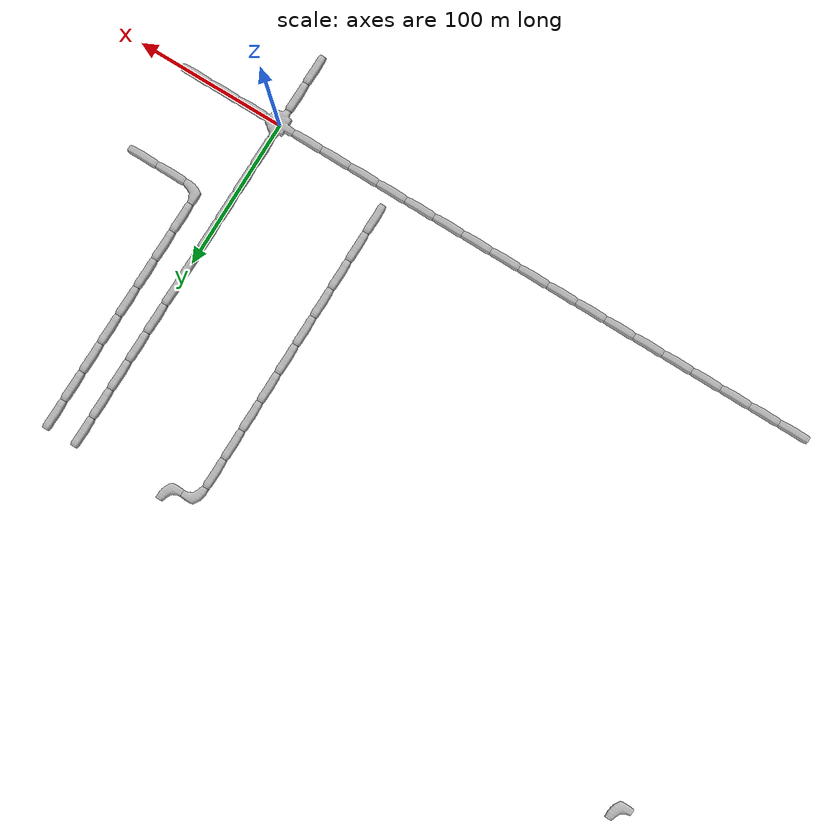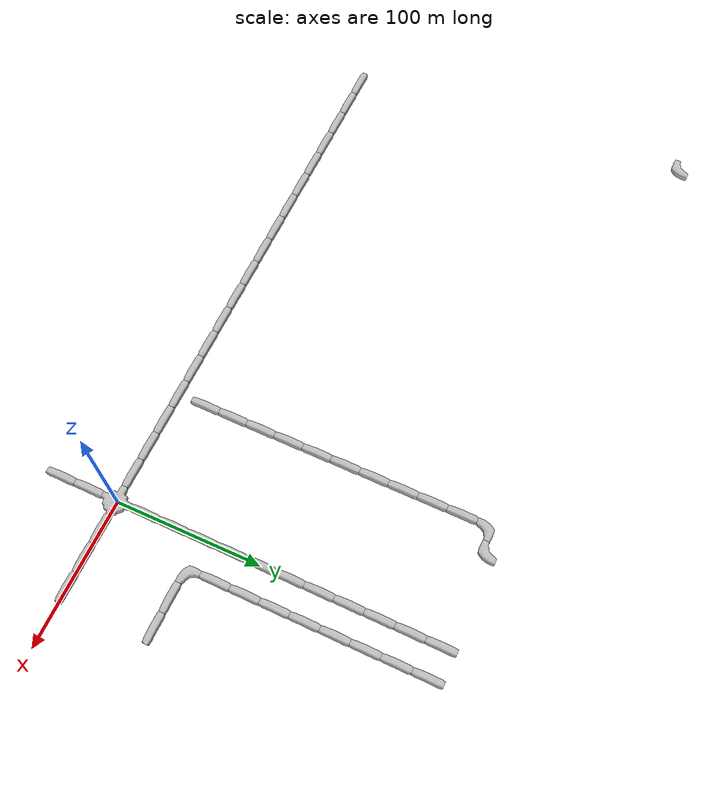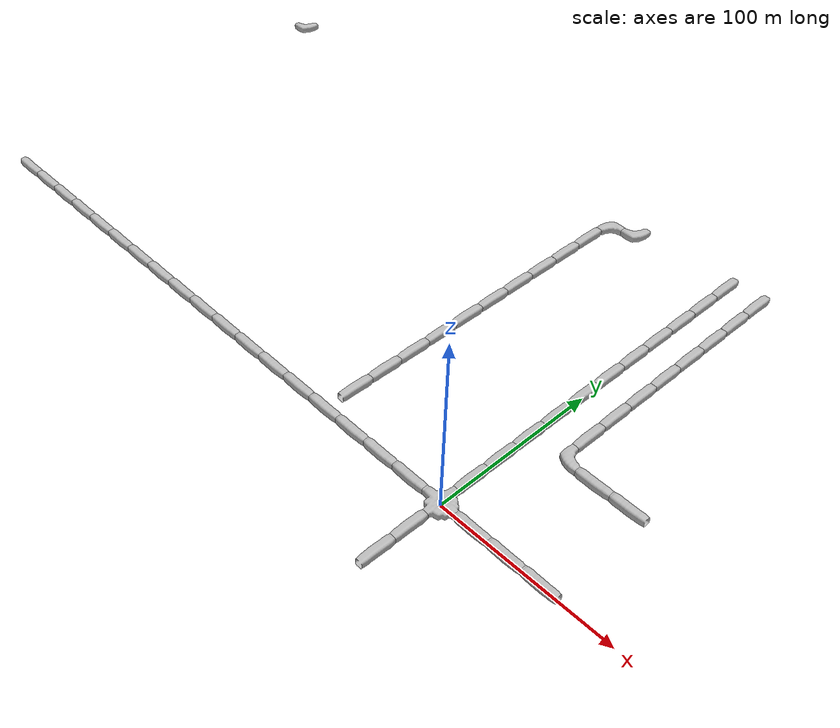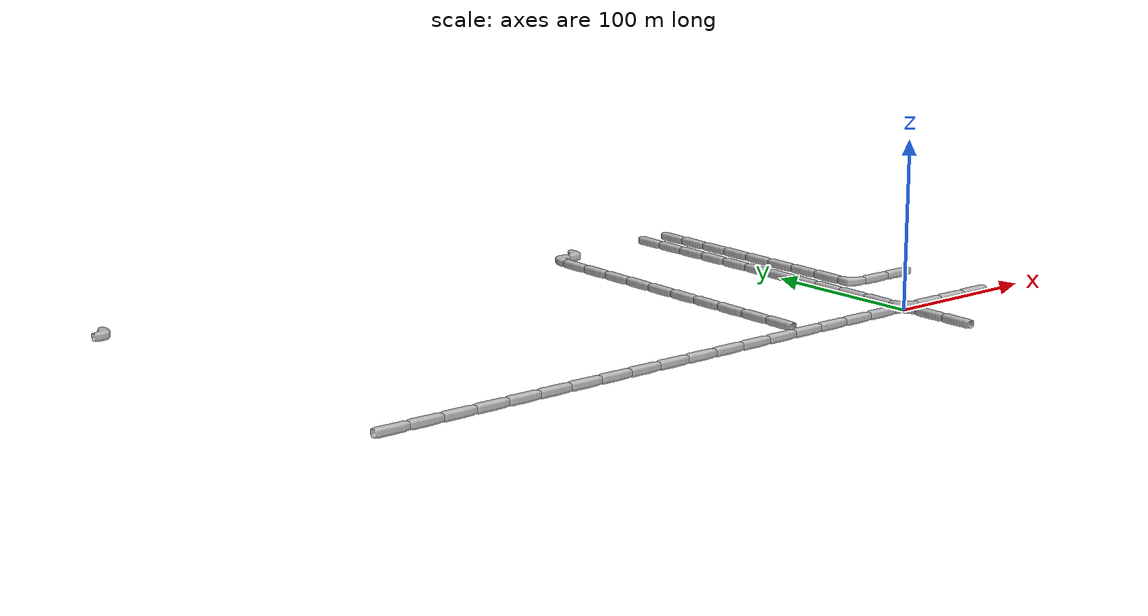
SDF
<sdf version="1.6">
 <world name="cave_32000_2">
  <include>
   <static>true</static>
   <name>cave_0_0</name>
   <pose>0 0 0 0 0 -1.5707963267948966</pose>
   <uri>model://cave_4way_20m</uri>
  </include>
  <include>
   <static>true</static>
   <name>cave_1_0</name>
   <pose>20 0 0 0 0 1.5707963267948966</pose>
   <uri>model://cave_straight_20m</uri>
  </include>
  <include>
   <static>true</static>
   <name>cave_2_0</name>
   <pose>40 0 0 0 0 1.5707963267948966</pose>
   <uri>model://cave_straight_20m</uri>
  </include>
  <include>
   <static>true</static>
   <name>cave_3_0</name>
   <pose>60 0 0 0 0 1.5707963267948966</pose>
   <uri>model://cave_straight_20m</uri>
  </include>
  <include>
   <static>true</static>
   <name>cave_0_-1</name>
   <pose>0 -20 0 0 0 0.0</pose>
   <uri>model://cave_straight_20m</uri>
  </include>
  <include>
   <static>true</static>
   <name>cave_0_-2</name>
   <pose>0 -40 0 0 0 0.0</pose>
   <uri>model://cave_straight_20m</uri>
  </include>
  <include>
   <static>true</static>
   <name>cave_-1_0</name>
   <pose>-20 0 0 0 0 1.5707963267948966</pose>
   <uri>model://cave_straight_20m</uri>
  </include>
  <include>
   <static>true</static>
   <name>cave_-2_0</name>
   <pose>-40 0 0 0 0 1.5707963267948966</pose>
   <uri>model://cave_straight_20m</uri>
  </include>
  <include>
   <static>true</static>
   <name>cave_-3_0</name>
   <pose>-60 0 0 0 0 1.5707963267948966</pose>
   <uri>model://cave_straight_20m</uri>
  </include>
  <include>
   <static>true</static>
   <name>cave_-4_0</name>
   <pose>-80 0 0 0 0 1.5707963267948966</pose>
   <uri>model://cave_straight_20m</uri>
  </include>
  <include>
   <static>true</static>
   <name>cave_-5_0</name>
   <pose>-100 0 0 0 0 1.5707963267948966</pose>
   <uri>model://cave_straight_20m</uri>
  </include>
  <include>
   <static>true</static>
   <name>cave_-6_0</name>
   <pose>-120 0 0 0 0 1.5707963267948966</pose>
   <uri>model://cave_straight_20m</uri>
  </include>
  <include>
   <static>true</static>
   <name>cave_-7_0</name>
   <pose>-140 0 0 0 0 1.5707963267948966</pose>
   <uri>model://cave_straight_20m</uri>
  </include>
  <include>
   <static>true</static>
   <name>cave_-8_0</name>
   <pose>-160 0 0 0 0 1.5707963267948966</pose>
   <uri>model://cave_straight_20m</uri>
  </include>
  <include>
   <static>true</static>
   <name>cave_-9_0</name>
   <pose>-180 0 0 0 0 1.5707963267948966</pose>
   <uri>model://cave_straight_20m</uri>
  </include>
  <include>
   <static>true</static>
   <name>cave_-10_0</name>
   <pose>-200 0 0 0 0 1.5707963267948966</pose>
   <uri>model://cave_straight_20m</uri>
  </include>
  <include>
   <static>true</static>
   <name>cave_-11_0</name>
   <pose>-220 0 0 0 0 1.5707963267948966</pose>
   <uri>model://cave_straight_20m</uri>
  </include>
  <include>
   <static>true</static>
   <name>cave_-12_0</name>
   <pose>-240 0 0 0 0 1.5707963267948966</pose>
   <uri>model://cave_straight_20m</uri>
  </include>
  <include>
   <static>true</static>
   <name>cave_-13_0</name>
   <pose>-260 0 0 0 0 1.5707963267948966</pose>
   <uri>model://cave_straight_20m</uri>
  </include>
  <include>
   <static>true</static>
   <name>cave_-14_0</name>
   <pose>-280 0 0 0 0 1.5707963267948966</pose>
   <uri>model://cave_straight_20m</uri>
  </include>
  <include>
   <static>true</static>
   <name>cave_-15_0</name>
   <pose>-300 0 0 0 0 1.5707963267948966</pose>
   <uri>model://cave_straight_20m</uri>
  </include>
  <include>
   <static>true</static>
   <name>cave_-16_0</name>
   <pose>-320 0 0 0 0 1.5707963267948966</pose>
   <uri>model://cave_straight_20m</uri>
  </include>
  <include>
   <static>true</static>
   <name>cave_-17_0</name>
   <pose>-340 0 0 0 0 1.5707963267948966</pose>
   <uri>model://cave_straight_20m</uri>
  </include>
  <include>
   <static>true</static>
   <name>cave_-18_0</name>
   <pose>-360 0 0 0 0 1.5707963267948966</pose>
   <uri>model://cave_straight_20m</uri>
  </include>
  <include>
   <static>true</static>
   <name>cave_-19_12</name>
   <pose>-380 240 0 0 0 1.5707963267948966</pose>
   <uri>model://cave_L_20m</uri>
  </include>
  <include>
   <static>true</static>
   <name>cave_0_1</name>
   <pose>0 20 0 0 0 0.0</pose>
   <uri>model://cave_straight_20m</uri>
  </include>
  <include>
   <static>true</static>
   <name>cave_0_2</name>
   <pose>0 40 0 0 0 0.0</pose>
   <uri>model://cave_straight_20m</uri>
  </include>
  <include>
   <static>true</static>
   <name>cave_0_3</name>
   <pose>0 60 0 0 0 0.0</pose>
   <uri>model://cave_straight_20m</uri>
  </include>
  <include>
   <static>true</static>
   <name>cave_0_4</name>
   <pose>0 80 0 0 0 0.0</pose>
   <uri>model://cave_straight_20m</uri>
  </include>
  <include>
   <static>true</static>
   <name>cave_0_5</name>
   <pose>0 100 0 0 0 0.0</pose>
   <uri>model://cave_straight_20m</uri>
  </include>
  <include>
   <static>true</static>
   <name>cave_0_6</name>
   <pose>0 120 0 0 0 0.0</pose>
   <uri>model://cave_straight_20m</uri>
  </include>
  <include>
   <static>true</static>
   <name>cave_0_7</name>
   <pose>0 140 0 0 0 0.0</pose>
   <uri>model://cave_straight_20m</uri>
  </include>
  <include>
   <static>true</static>
   <name>cave_0_8</name>
   <pose>0 160 0 0 0 0.0</pose>
   <uri>model://cave_straight_20m</uri>
  </include>
  <include>
   <static>true</static>
   <name>cave_0_9</name>
   <pose>0 180 0 0 0 0.0</pose>
   <uri>model://cave_straight_20m</uri>
  </include>
  <include>
   <static>true</static>
   <name>cave_0_10</name>
   <pose>0 200 0 0 0 0.0</pose>
   <uri>model://cave_straight_20m</uri>
  </include>
  <include>
   <static>true</static>
   <name>cave_0_11</name>
   <pose>0 220 0 0 0 0.0</pose>
   <uri>model://cave_straight_20m</uri>
  </include>
  <include>
   <static>true</static>
   <name>cave_-3_11</name>
   <pose>-60 220 0 0 0 1.5707963267948966</pose>
   <uri>model://cave_L_20m</uri>
  </include>
  <include>
   <static>true</static>
   <name>cave_-4_11</name>
   <pose>-80 220 0 0 0 -1.5707963267948966</pose>
   <uri>model://cave_L_20m</uri>
  </include>
  <include>
   <static>true</static>
   <name>cave_-4_10</name>
   <pose>-80 200 0 0 0 0.0</pose>
   <uri>model://cave_straight_20m</uri>
  </include>
  <include>
   <static>true</static>
   <name>cave_-4_9</name>
   <pose>-80 180 0 0 0 0.0</pose>
   <uri>model://cave_straight_20m</uri>
  </include>
  <include>
   <static>true</static>
   <name>cave_-4_8</name>
   <pose>-80 160 0 0 0 0.0</pose>
   <uri>model://cave_straight_20m</uri>
  </include>
  <include>
   <static>true</static>
   <name>cave_-4_7</name>
   <pose>-80 140 0 0 0 0.0</pose>
   <uri>model://cave_straight_20m</uri>
  </include>
  <include>
   <static>true</static>
   <name>cave_-4_6</name>
   <pose>-80 120 0 0 0 0.0</pose>
   <uri>model://cave_straight_20m</uri>
  </include>
  <include>
   <static>true</static>
   <name>cave_-4_5</name>
   <pose>-80 100 0 0 0 0.0</pose>
   <uri>model://cave_straight_20m</uri>
  </include>
  <include>
   <static>true</static>
   <name>cave_-4_4</name>
   <pose>-80 80 0 0 0 0.0</pose>
   <uri>model://cave_straight_20m</uri>
  </include>
  <include>
   <static>true</static>
   <name>cave_-4_3</name>
   <pose>-80 60 0 0 0 0.0</pose>
   <uri>model://cave_straight_20m</uri>
  </include>
  <include>
   <static>true</static>
   <name>cave_-4_2</name>
   <pose>-80 40 0 0 0 0.0</pose>
   <uri>model://cave_straight_20m</uri>
  </include>
  <include>
   <static>true</static>
   <name>cave_-4_1</name>
   <pose>-80 20 0 0 0 0.0</pose>
   <uri>model://cave_straight_20m</uri>
  </include>
  <include>
   <static>true</static>
   <name>cave_1_11</name>
   <pose>20 220 0 0 0 0.0</pose>
   <uri>model://cave_straight_20m</uri>
  </include>
  <include>
   <static>true</static>
   <name>cave_1_10</name>
   <pose>20 200 0 0 0 0.0</pose>
   <uri>model://cave_straight_20m</uri>
  </include>
  <include>
   <static>true</static>
   <name>cave_1_9</name>
   <pose>20 180 0 0 0 0.0</pose>
   <uri>model://cave_straight_20m</uri>
  </include>
  <include>
   <static>true</static>
   <name>cave_1_8</name>
   <pose>20 160 0 0 0 0.0</pose>
   <uri>model://cave_straight_20m</uri>
  </include>
  <include>
   <static>true</static>
   <name>cave_1_7</name>
   <pose>20 140 0 0 0 0.0</pose>
   <uri>model://cave_straight_20m</uri>
  </include>
  <include>
   <static>true</static>
   <name>cave_1_6</name>
   <pose>20 120 0 0 0 0.0</pose>
   <uri>model://cave_straight_20m</uri>
  </include>
  <include>
   <static>true</static>
   <name>cave_1_5</name>
   <pose>20 100 0 0 0 0.0</pose>
   <uri>model://cave_straight_20m</uri>
  </include>
  <include>
   <static>true</static>
   <name>cave_1_4</name>
   <pose>20 80 0 0 0 0.0</pose>
   <uri>model://cave_straight_20m</uri>
  </include>
  <include>
   <static>true</static>
   <name>cave_1_3</name>
   <pose>20 60 0 0 0 0.0</pose>
   <uri>model://cave_L_20m</uri>
  </include>
  <include>
   <static>true</static>
   <name>cave_2_3</name>
   <pose>40 60 0 0 0 1.5707963267948966</pose>
   <uri>model://cave_straight_20m</uri>
  </include>
  <include>
   <static>true</static>
   <name>cave_3_3</name>
   <pose>60 60 0 0 0 1.5707963267948966</pose>
   <uri>model://cave_straight_20m</uri>
  </include>
 </world>
</sdf>
